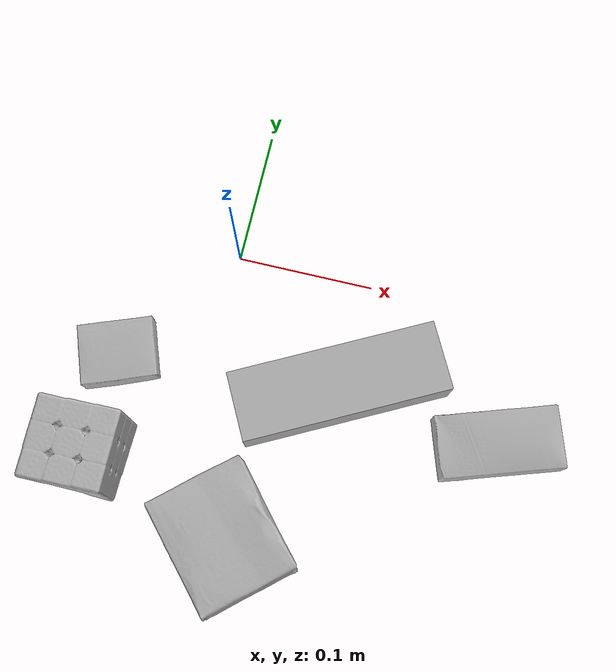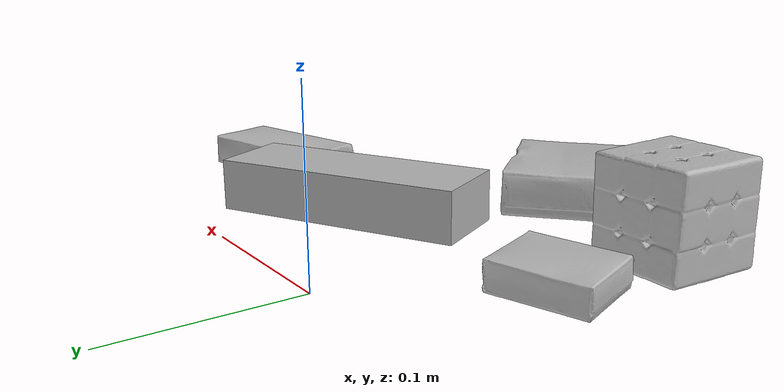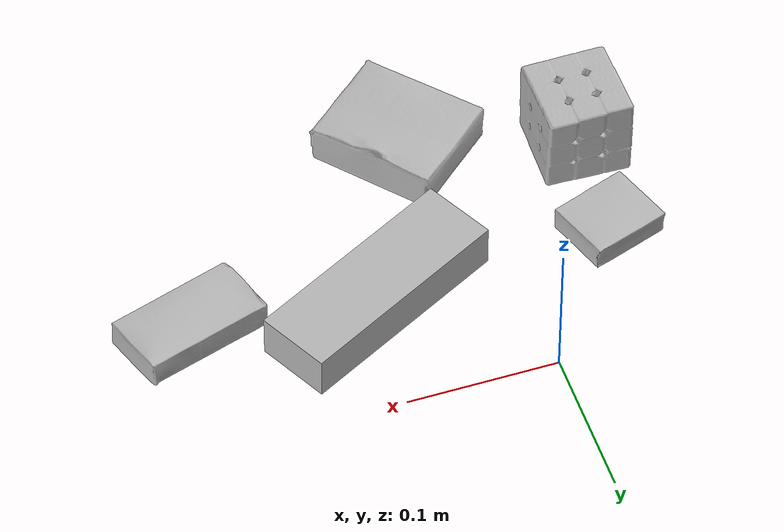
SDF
<sdf version="1.4">
  <world name="default">
    <light name="light1" type="point">
      <pose>0 0 1 0 0 0</pose>
      <diffuse>3 3 3 1</diffuse>
      <specular>3 3 3 1</specular>
    </light>
    <light name="light2" type="point">
      <pose>0 0.5 2 0 0 0</pose>
      <diffuse>1 1 1 1</diffuse>
      <specular>1 1 1 1</specular>
    </light>
    <light name="light3" type="point">
      <pose>0 0.5 2 0 0 0</pose>
      <diffuse>3 3 3 1</diffuse>
      <specular>3 3 3 1</specular>
    </light>
    <scene>
      <ambient>0.7 0.7 0.7</ambient>
    </scene>
    <model name="box1">
      <link name="link_box1">
        <collision name="default">
          <geometry>
            <mesh>
              <uri>model://sugar_box/collision_meshes/collision.obj</uri>
              <scale>0.5 0.5 0.5</scale>
            </mesh>
          </geometry>
          <surface>
            <friction>
              <ode>
                <mu>0.5</mu>
                <mu2>0.5</mu2>
              </ode>
            </friction>
          <contact>
        <ode>
            <max_vel>0</max_vel>
            <min_depth>0.0001</min_depth>
            <kp>1e8</kp>
        </ode>
    </contact></surface>
        </collision>
        <visual name="default">
          <geometry>
            <mesh>
              <uri>model://sugar_box/visual_meshes/visual.dae</uri>
              <scale>0.5 0.5 0.5</scale>
            </mesh>
          </geometry>
        </visual>
        <inertial>
          <mass>0.06211651861667633</mass>
          <pose>0.0005171863595023751 1.9245546354795806e-05 -0.00018182402709499002 -0.00040462630054681676 0.0010506634057476226 0.0026153787889456807</pose>
          <inertia>
            <ixx>1.2938825e-05</ixx>
            <iyy>4.1820942e-05</iyy>
            <izz>5.0064667e-05</izz>
            <ixy>0</ixy>
            <ixz>0</ixz>
            <iyz>0</iyz>
          </inertia>
        </inertial>
      </link>
      <pose>0.21067708730697632 -0.09449756145477295 0.011399305425584316 0.0007753559801376605 -0.023432501535510627 0.3154768462392833</pose>
    </model>
    <model name="box2">
      <link name="link_box2">
        <collision name="default">
          <geometry>
            <mesh>
              <uri>model://rubiks_cube/collision_meshes/collision.obj</uri>
              <scale>1.0 1.0 1.0</scale>
            </mesh>
          </geometry>
          <surface>
            <friction>
              <ode>
                <mu>0.5</mu>
                <mu2>0.5</mu2>
              </ode>
            </friction>
          <contact>
        <ode>
            <max_vel>0</max_vel>
            <min_depth>0.0001</min_depth>
            <kp>1e8</kp>
        </ode>
    </contact></surface>
        </collision>
        <visual name="default">
          <geometry>
            <mesh>
              <uri>model://rubiks_cube/visual_meshes/visual.dae</uri>
              <scale>1.0 1.0 1.0</scale>
            </mesh>
          </geometry>
        </visual>
        <inertial>
          <mass>0.2700360119342804</mass>
          <pose>2.6721041649580002e-05 5.256967051536776e-05 -7.264316536748083e-06 -0.05467324422766238 -0.0981422115654675 -0.034454566623261795</pose>
          <inertia>
            <ixx>0.00014921304</ixx>
            <iyy>0.00014851718</iyy>
            <izz>0.00015044949</izz>
            <ixy>0</ixy>
            <ixz>0</ixz>
            <iyz>0</iyz>
          </inertia>
        </inertial>
      </link>
      <pose>-0.07030550390481949 -0.1661597341299057 0.02867899276316166 -2.63721824939497e-06 -7.975293978503517e-07 0.0016135443281806354</pose>
    </model>
    <model name="box3">
      <link name="link_box3">
        <collision name="default">
          <geometry>
            <mesh>
              <uri>model://jenga/collision_meshes/collision.obj</uri>
              <scale>1.0 1.0 1.0</scale>
            </mesh>
          </geometry>
          <surface>
            <friction>
              <ode>
                <mu>0.5</mu>
                <mu2>0.5</mu2>
              </ode>
            </friction>
          <contact>
        <ode>
            <max_vel>0</max_vel>
            <min_depth>0.0001</min_depth>
            <kp>1e8</kp>
        </ode>
    </contact></surface>
        </collision>
        <visual name="default">
          <geometry>
            <mesh>
              <uri>model://jenga/visual_meshes/visual.dae</uri>
              <scale>1.0 1.0 1.0</scale>
            </mesh>
          </geometry>
        </visual>
        <inertial>
          <mass>0.12586519122123718</mass>
          <pose>-2.502855807051674e-07 -0.00010250010382151231 -4.0923401684267446e-05 0.0 -7.342154049184251e-07 0.0</pose>
          <inertia>
            <ixx>3.482995e-05</ixx>
            <iyy>0.0002360068</iyy>
            <izz>0.00025195733</izz>
            <ixy>0</ixy>
            <ixz>0</ixz>
            <iyz>0</iyz>
          </inertia>
        </inertial>
      </link>
      <pose>0.09288659691810608 -0.07981175184249878 0.015000000596046448 1.737024972307365e-08 2.427937566671839e-10 -2.660654030964957</pose>
    </model>
    <model name="box4">
      <link name="link_box4">
        <collision name="default">
          <geometry>
            <mesh>
              <uri>model://gelatin_box/collision_meshes/collision.obj</uri>
              <scale>1.0 1.0 1.0</scale>
            </mesh>
          </geometry>
          <surface>
            <friction>
              <ode>
                <mu>0.5</mu>
                <mu2>0.5</mu2>
              </ode>
            </friction>
          <contact>
        <ode>
            <max_vel>0</max_vel>
            <min_depth>0.0001</min_depth>
            <kp>1e8</kp>
        </ode>
    </contact></surface>
        </collision>
        <visual name="default">
          <geometry>
            <mesh>
              <uri>model://gelatin_box/visual_meshes/visual.dae</uri>
              <scale>1.0 1.0 1.0</scale>
            </mesh>
          </geometry>
        </visual>
        <inertial>
          <mass>0.0925464928150177</mass>
          <pose>0.0004319618456065655 0.00011156871914863586 -0.0003640321083366871 -0.0010503719798216618 -0.004755819622564704 0.01644055760929568</pose>
          <inertia>
            <ixx>6.533027e-05</ixx>
            <iyy>4.6665074e-05</iyy>
            <izz>9.9447236e-05</izz>
            <ixy>0</ixy>
            <ixz>0</ixz>
            <iyz>0</iyz>
          </inertia>
        </inertial>
      </link>
      <pose>0.03867258131504059 -0.20149274170398712 0.015168312005698681 0.005597435524131612 -0.0073044954493934056 0.7096003795920217</pose>
    </model>
    <model name="box5">
      <link name="link_box5">
        <collision name="default">
          <geometry>
            <mesh>
              <uri>model://pudding_box/collision_meshes/collision.obj</uri>
              <scale>0.5 0.5 0.5</scale>
            </mesh>
          </geometry>
          <surface>
            <friction>
              <ode>
                <mu>0.5</mu>
                <mu2>0.5</mu2>
              </ode>
            </friction>
          <contact>
        <ode>
            <max_vel>0</max_vel>
            <min_depth>0.0001</min_depth>
            <kp>1e8</kp>
        </ode>
    </contact></surface>
        </collision>
        <visual name="default">
          <geometry>
            <mesh>
              <uri>model://pudding_box/visual_meshes/visual.dae</uri>
              <scale>0.5 0.5 0.5</scale>
            </mesh>
          </geometry>
        </visual>
        <inertial>
          <mass>0.0266704261302948</mass>
          <pose>0.00024474109522998333 0.00040339428232982755 -0.0002594413817860186 0.005213101812636465 -0.006603797316727521 0.020079823300208206</pose>
          <inertia>
            <ixx>7.5373864e-06</ixx>
            <iyy>5.0712065e-06</iyy>
            <izz>1.113092e-05</izz>
            <ixy>0</ixy>
            <ixz>0</ixz>
            <iyz>0</iyz>
          </inertia>
        </inertial>
      </link>
      <pose>-0.06679604947566986 -0.09239766746759415 0.00986290629953146 0.02234963406266563 -0.01139096762937803 -1.2186308241638826</pose>
    </model>
  <physics type="ode">
      <max_contacts>50</max_contacts>
      <ode>
        <solver>
          <type>quick</type>
          <iters>75</iters>
        </solver>
        <constraints>
          <contact_max_correcting_vel>0</contact_max_correcting_vel>
          <contact_surface_layer>0</contact_surface_layer>
        </constraints>
      </ode>
    </physics></world>
</sdf>
